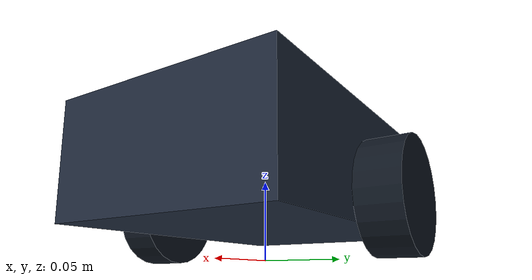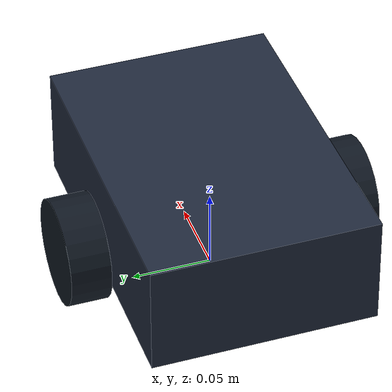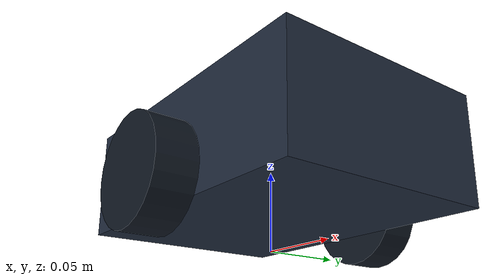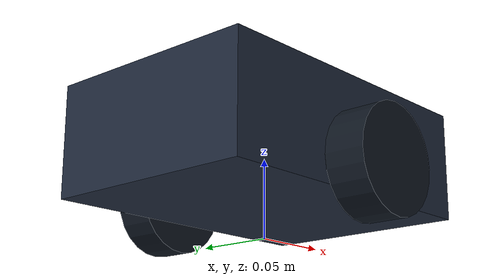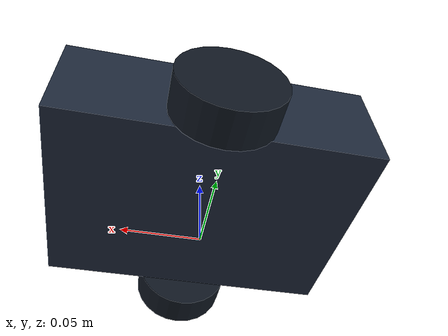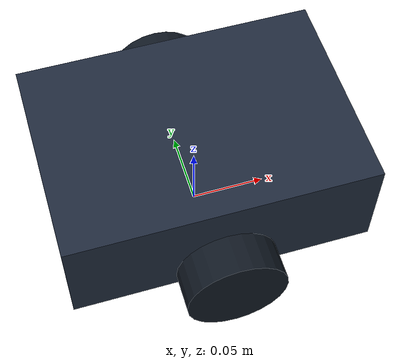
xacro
<?xml version="1.0"?>
<robot xmlns:xacro="http://www.ros.org/wiki/xacro" name="diff_drive_robot">

  <!-- Physical Properties from params.yaml & main.cpp -->
  <xacro:property name="wheel_radius" value="0.033"/>
  <xacro:property name="wheel_width" value="0.025"/>
  <xacro:property name="wheel_separation" value="0.170"/>
  <xacro:property name="chassis_length" value="0.200"/>
  <xacro:property name="chassis_width" value="0.140"/>
  <xacro:property name="chassis_height" value="0.070"/>

  <!-- Materials -->
  <material name="chassis_mat">
    <color rgba="0.12 0.16 0.23 1.0"/>
  </material>
  <material name="accent_mat">
    <color rgba="0.02 0.71 0.83 1.0"/>
  </material>
  <material name="tire_mat">
    <color rgba="0.06 0.09 0.13 1.0"/>
  </material>
  <material name="lidar_mat">
    <color rgba="0.93 0.26 0.26 1.0"/>
  </material>

  <!-- Base Footprint (Ground plane projection) -->
  <link name="base_footprint"/>

  <joint name="base_footprint_joint" type="fixed">
    <parent link="base_footprint"/>
    <child link="base_link"/>
    <origin xyz="0 0 ${wheel_radius}" rpy="0 0 0"/>
  </joint>

  <!-- Base Link (Robot Chassis Center) -->
  <link name="base_link">
    <visual>
      <origin xyz="0 0 0.02" rpy="0 0 0"/>
      <geometry>
        <box size="${chassis_length} ${chassis_width} ${chassis_height}"/>
      </geometry>
      <material name="chassis_mat"/>
    </visual>
    <collision>
      <origin xyz="0 0 0.02" rpy="0 0 0"/>
      <geometry>
        <box size="${chassis_length} ${chassis_width} ${chassis_height}"/>
      </geometry>
    </collision>
  </link>

  <!-- Left Wheel -->
  <joint name="left_wheel_joint" type="continuous">
    <parent link="base_link"/>
    <child link="left_wheel"/>
    <origin xyz="0 ${wheel_separation/2.0} 0" rpy="-1.57079632679 0 0"/>
    <axis xyz="0 0 1"/>
  </joint>

  <link name="left_wheel">
    <visual>
      <origin xyz="0 0 0" rpy="0 0 0"/>
      <geometry>
        <cylinder radius="${wheel_radius}" length="${wheel_width}"/>
      </geometry>
      <material name="tire_mat"/>
    </visual>
    <collision>
      <origin xyz="0 0 0" rpy="0 0 0"/>
      <geometry>
        <cylinder radius="${wheel_radius}" length="${wheel_width}"/>
      </geometry>
    </collision>
  </link>

  <!-- Right Wheel -->
  <joint name="right_wheel_joint" type="continuous">
    <parent link="base_link"/>
    <child link="right_wheel"/>
    <origin xyz="0 -${wheel_separation/2.0} 0" rpy="-1.57079632679 0 0"/>
    <axis xyz="0 0 1"/>
  </joint>

  <link name="right_wheel">
    <visual>
      <origin xyz="0 0 0" rpy="0 0 0"/>
      <geometry>
        <cylinder radius="${wheel_radius}" length="${wheel_width}"/>
      </geometry>
      <material name="tire_mat"/>
    </visual>
    <collision>
      <origin xyz="0 0 0" rpy="0 0 0"/>
      <geometry>
        <cylinder radius="${wheel_radius}" length="${wheel_width}"/>
      </geometry>
    </collision>
  </link>

  <!-- YDLidar (laser_frame) — yaw=π because LiDAR is mounted backwards -->
  <joint name="laser_joint" type="fixed">
    <parent link="base_link"/>
    <child link="laser_frame"/>
    <origin xyz="0 0 0.02" rpy="0 0 3.14159265"/>
  </joint>

  <link name="laser_frame">
    <visual>
      <origin xyz="0 0 0" rpy="0 0 0"/>
      <geometry>
        <cylinder radius="0.035" length="0.030"/>
      </geometry>
      <material name="lidar_mat"/>
    </visual>
  </link>

  <!-- MPU6050 (imu_link) -->
  <joint name="imu_joint" type="fixed">
    <parent link="base_link"/>
    <child link="imu_link"/>
    <origin xyz="0 0 0.03" rpy="0 0 0"/>
  </joint>

  <link name="imu_link">
    <visual>
      <origin xyz="0 0 0" rpy="0 0 0"/>
      <geometry>
        <box size="0.02 0.02 0.005"/>
      </geometry>
      <material name="accent_mat"/>
    </visual>
  </link>

</robot>
